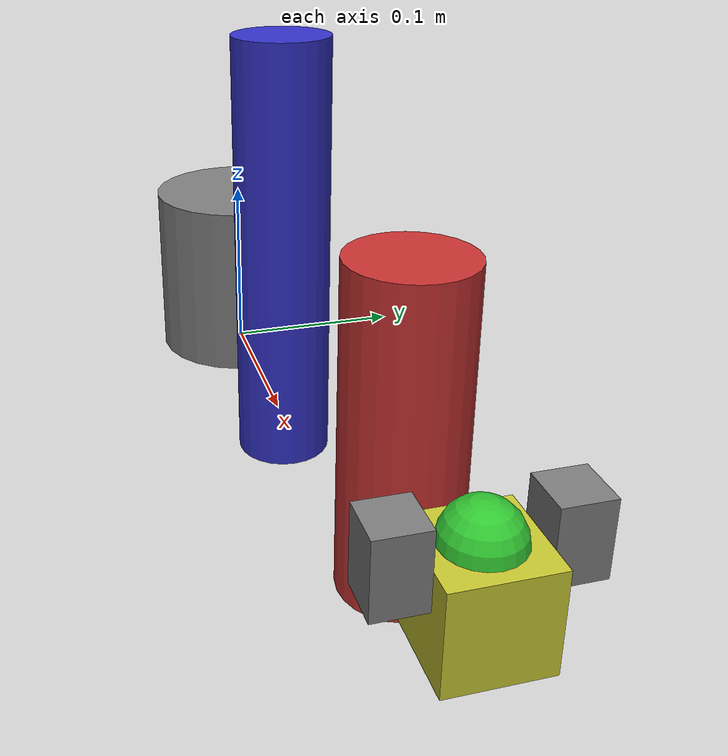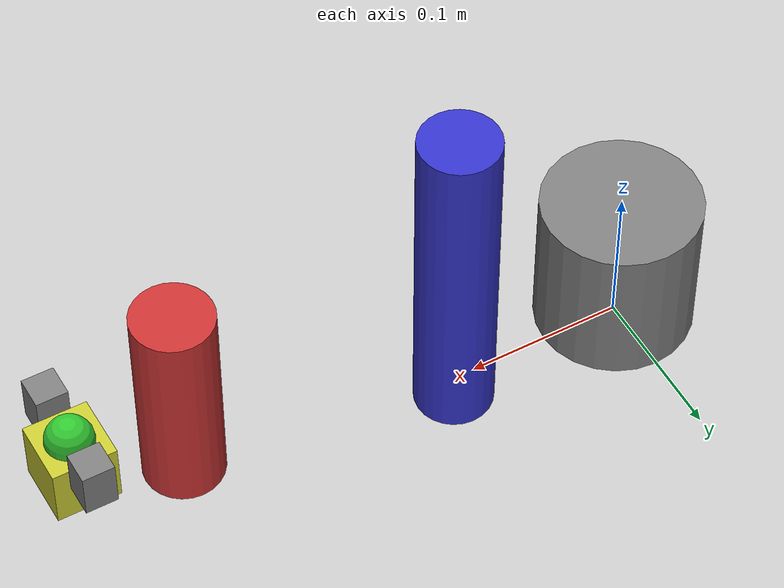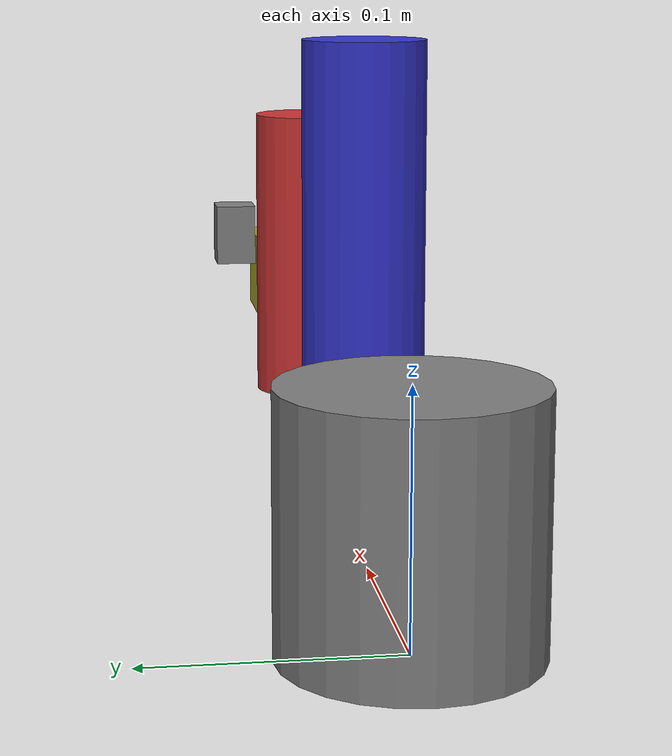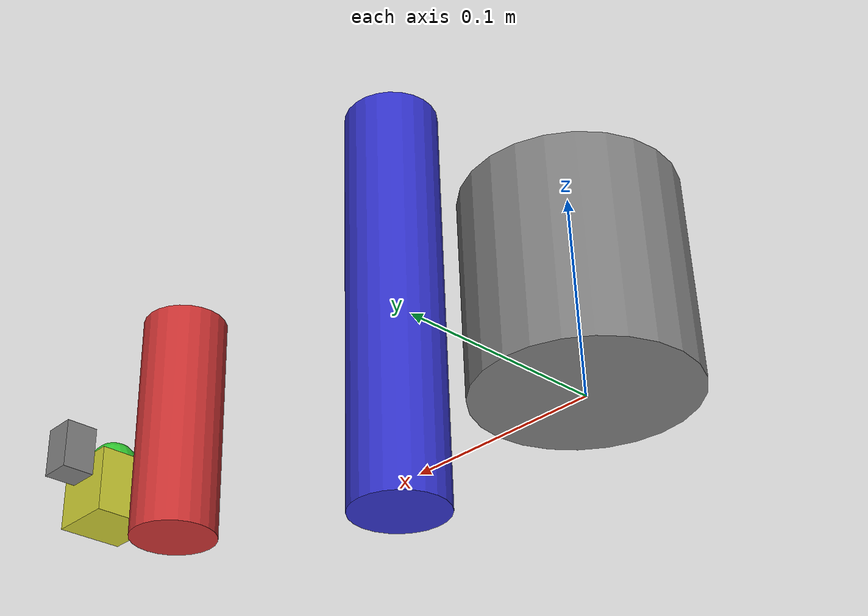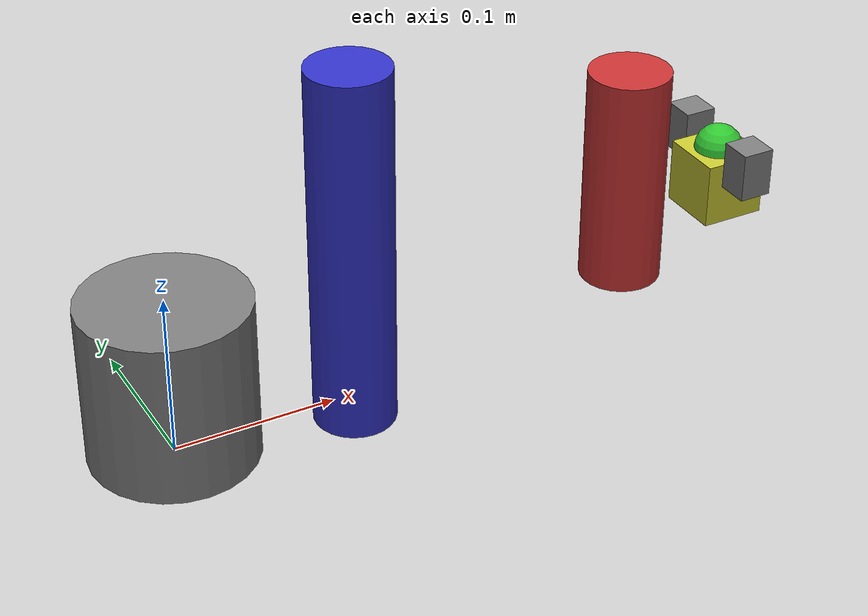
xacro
<?xml version="1.0"?>
<robot xmlns:xacro="http://www.ros.org/wiki/xacro" name="scara_robot">

  <!-- Robot Parameters -->
  <xacro:property name="L1" value="0.228"/>  <!-- Link 1 length: 228mm = 0.228m -->
  <xacro:property name="L2" value="0.1365"/> <!-- Link 2 length: 136.5mm = 0.1365m -->
  <xacro:property name="base_height" value="0.100"/> <!-- Base height: 100mm -->
  <xacro:property name="link_radius" value="0.025"/> <!-- Link radius: 25mm -->
  <xacro:property name="z_max" value="0.150"/> <!-- Z-axis max travel: 150mm -->

  <!-- Joint Limits (degrees to radians) -->
  <xacro:property name="j1_min" value="${-90.0 * pi / 180.0}"/>   <!-- -90 deg -->
  <xacro:property name="j1_max" value="${266.0 * pi / 180.0}"/>   <!-- 266 deg -->
  <xacro:property name="j2_min" value="${-150.0 * pi / 180.0}"/>  <!-- -150 deg -->
  <xacro:property name="j2_max" value="${150.0 * pi / 180.0}"/>   <!-- 150 deg -->
  <xacro:property name="j3_min" value="${-162.0 * pi / 180.0}"/>  <!-- -162 deg -->
  <xacro:property name="j3_max" value="${162.0 * pi / 180.0}"/>   <!-- 162 deg -->

  <!-- Base Link -->
  <link name="base_link">
    <visual>
      <origin xyz="0 0 ${base_height/2}" rpy="0 0 0"/>
      <geometry>
        <cylinder radius="0.050" length="${base_height}"/>
      </geometry>
      <material name="base_color">
        <color rgba="0.5 0.5 0.5 1"/>
      </material>
    </visual>
    <collision>
      <origin xyz="0 0 ${base_height/2}" rpy="0 0 0"/>
      <geometry>
        <cylinder radius="0.050" length="${base_height}"/>
      </geometry>
    </collision>
    <inertial>
      <mass value="1.0"/>
      <origin xyz="0 0 ${base_height/2}" rpy="0 0 0"/>
      <inertia ixx="0.01" ixy="0" ixz="0" iyy="0.01" iyz="0" izz="0.01"/>
    </inertial>
  </link>

  <!-- Joint 1 (Base Rotation) -->
  <joint name="joint1" type="revolute">
    <parent link="base_link"/>
    <child link="link1"/>
    <origin xyz="0 0 ${base_height}" rpy="0 0 0"/>
    <axis xyz="0 0 1"/>
    <limit lower="${j1_min}" upper="${j1_max}" effort="100.0" velocity="2.0"/>
  </joint>

  <!-- Link 1 -->
  <link name="link1">
    <visual>
      <origin xyz="${L1/2} 0 0" rpy="0 0 0"/>
      <geometry>
        <cylinder radius="${link_radius}" length="${L1}"/>
      </geometry>
      <material name="link1_color">
        <color rgba="0.2 0.2 0.8 1"/>
      </material>
    </visual>
    <collision>
      <origin xyz="${L1/2} 0 0" rpy="0 0 0"/>
      <geometry>
        <cylinder radius="${link_radius}" length="${L1}"/>
      </geometry>
    </collision>
    <inertial>
      <mass value="0.5"/>
      <origin xyz="${L1/2} 0 0" rpy="0 0 0"/>
      <inertia ixx="0.01" ixy="0" ixz="0" iyy="0.01" iyz="0" izz="0.01"/>
    </inertial>
  </link>

  <!-- Joint 2 (Shoulder/Elbow) -->
  <joint name="joint2" type="revolute">
    <parent link="link1"/>
    <child link="link2"/>
    <origin xyz="${L1} 0 0" rpy="0 0 0"/>
    <axis xyz="0 0 1"/>
    <limit lower="${j2_min}" upper="${j2_max}" effort="100.0" velocity="2.0"/>
  </joint>

  <!-- Link 2 -->
  <link name="link2">
    <visual>
      <origin xyz="${L2/2} 0 0" rpy="0 0 0"/>
      <geometry>
        <cylinder radius="${link_radius}" length="${L2}"/>
      </geometry>
      <material name="link2_color">
        <color rgba="0.8 0.2 0.2 1"/>
      </material>
    </visual>
    <collision>
      <origin xyz="${L2/2} 0 0" rpy="0 0 0"/>
      <geometry>
        <cylinder radius="${link_radius}" length="${L2}"/>
      </geometry>
    </collision>
    <inertial>
      <mass value="0.3"/>
      <origin xyz="${L2/2} 0 0" rpy="0 0 0"/>
      <inertia ixx="0.01" ixy="0" ixz="0" iyy="0.01" iyz="0" izz="0.01"/>
    </inertial>
  </link>

  <!-- Joint 3 (Wrist Rotation - Phi) -->
  <joint name="joint3" type="revolute">
    <parent link="link2"/>
    <child link="wrist"/>
    <origin xyz="${L2} 0 0" rpy="0 0 0"/>
    <axis xyz="0 0 1"/>
    <limit lower="${j3_min}" upper="${j3_max}" effort="50.0" velocity="2.0"/>
  </joint>

  <!-- Wrist Link -->
  <link name="wrist">
    <visual>
      <origin xyz="0 0 0" rpy="0 0 0"/>
      <geometry>
        <sphere radius="0.015"/>
      </geometry>
      <material name="wrist_color">
        <color rgba="0.2 0.8 0.2 1"/>
      </material>
    </visual>
    <collision>
      <origin xyz="0 0 0" rpy="0 0 0"/>
      <geometry>
        <sphere radius="0.015"/>
      </geometry>
    </collision>
    <inertial>
      <mass value="0.1"/>
      <origin xyz="0 0 0" rpy="0 0 0"/>
      <inertia ixx="0.001" ixy="0" ixz="0" iyy="0.001" iyz="0" izz="0.001"/>
    </inertial>
  </link>

  <!-- Joint 4 (Z-axis - Prismatic) -->
  <joint name="joint_z" type="prismatic">
    <parent link="wrist"/>
    <child link="end_effector"/>
    <origin xyz="0 0 0" rpy="0 0 0"/>
    <axis xyz="0 0 1"/>
    <limit lower="0" upper="${z_max}" effort="50.0" velocity="0.1"/>
  </joint>

  <!-- End Effector (Gripper) -->
  <link name="end_effector">
    <visual>
      <origin xyz="0 0 -0.02" rpy="0 0 0"/>
      <geometry>
        <box size="0.04 0.04 0.04"/>
      </geometry>
      <material name="end_effector_color">
        <color rgba="0.8 0.8 0.2 1"/>
      </material>
    </visual>
    <collision>
      <origin xyz="0 0 -0.02" rpy="0 0 0"/>
      <geometry>
        <box size="0.04 0.04 0.04"/>
      </geometry>
    </collision>
    <inertial>
      <mass value="0.05"/>
      <origin xyz="0 0 -0.02" rpy="0 0 0"/>
      <inertia ixx="0.0001" ixy="0" ixz="0" iyy="0.0001" iyz="0" izz="0.0001"/>
    </inertial>
  </link>

  <!-- Gripper Joint (Virtual) -->
  <joint name="gripper_joint" type="prismatic">
    <parent link="end_effector"/>
    <child link="gripper_left"/>
    <origin xyz="0 0.02 0" rpy="0 0 0"/>
    <axis xyz="0 1 0"/>
    <limit lower="0" upper="0.02" effort="10.0" velocity="0.05"/>
  </joint>

  <link name="gripper_left">
    <visual>
      <origin xyz="0 0.01 0" rpy="0 0 0"/>
      <geometry>
        <box size="0.02 0.02 0.03"/>
      </geometry>
      <material name="gripper_color">
        <color rgba="0.5 0.5 0.5 1"/>
      </material>
    </visual>
  </link>

  <joint name="gripper_joint2" type="prismatic">
    <parent link="end_effector"/>
    <child link="gripper_right"/>
    <origin xyz="0 -0.02 0" rpy="0 0 0"/>
    <axis xyz="0 1 0"/>
    <limit lower="-0.02" upper="0" effort="10.0" velocity="0.05"/>
  </joint>

  <link name="gripper_right">
    <visual>
      <origin xyz="0 -0.01 0" rpy="0 0 0"/>
      <geometry>
        <box size="0.02 0.02 0.03"/>
      </geometry>
      <material name="gripper_color">
        <color rgba="0.5 0.5 0.5 1"/>
      </material>
    </visual>
  </link>

  <!-- Gazebo Plugins -->
  <gazebo>
    <plugin name="gazebo_ros2_control" filename="libgazebo_ros2_control.so">
      <parameters>$(find scara_description)/config/controllers.yaml</parameters>
    </plugin>
  </gazebo>

</robot>
